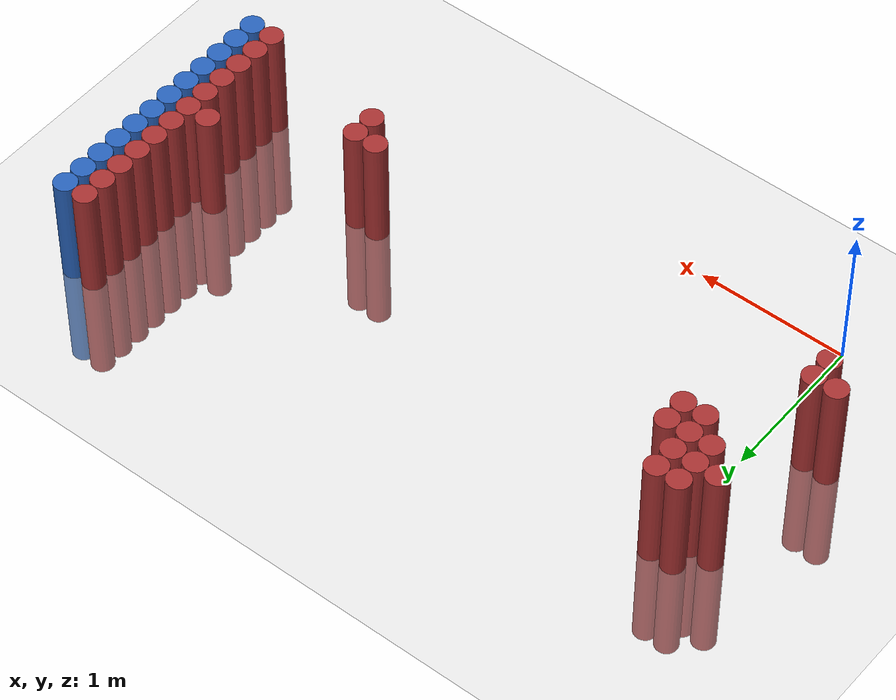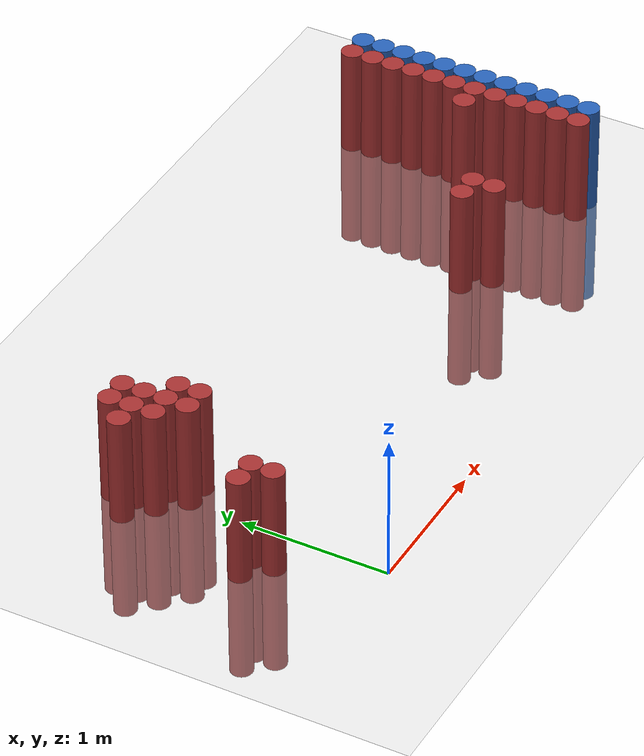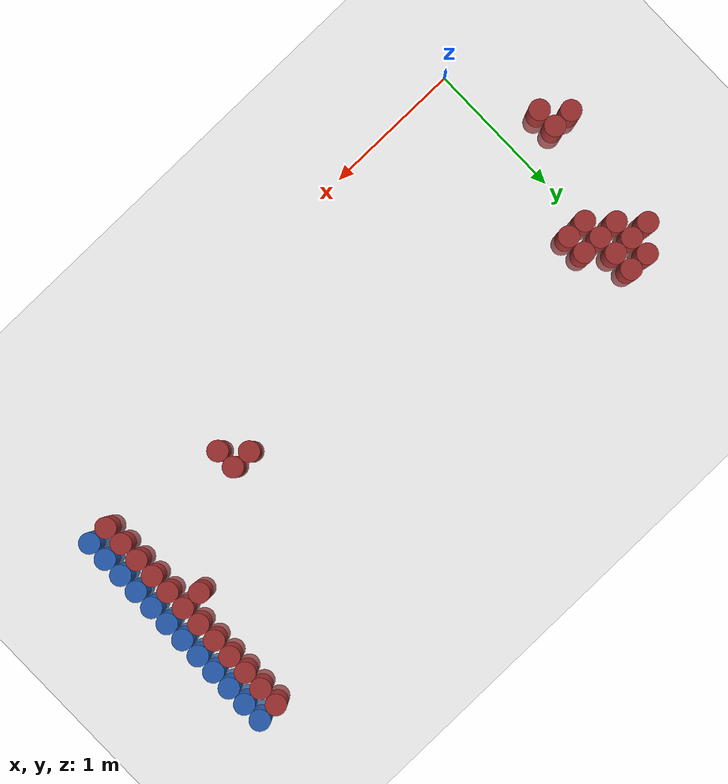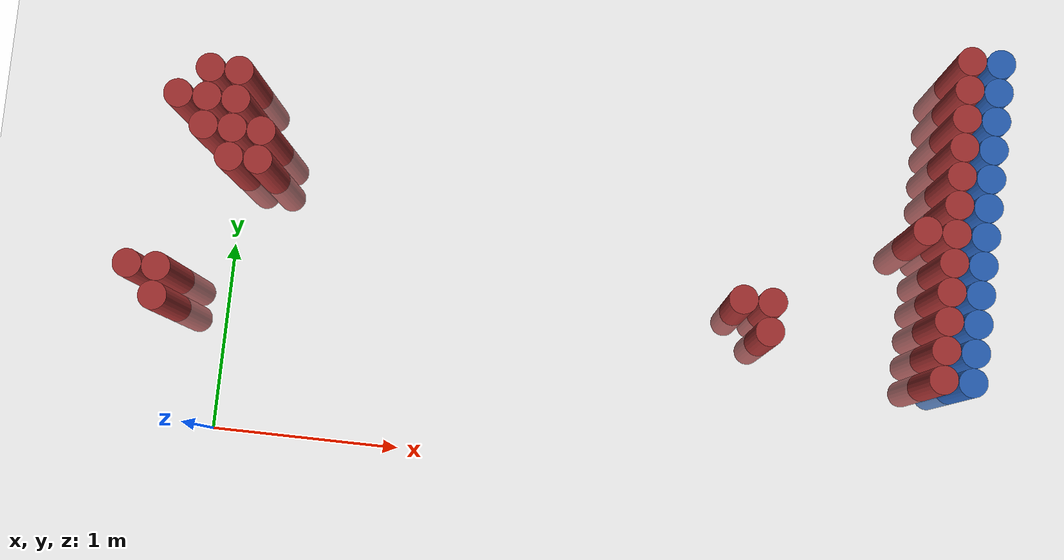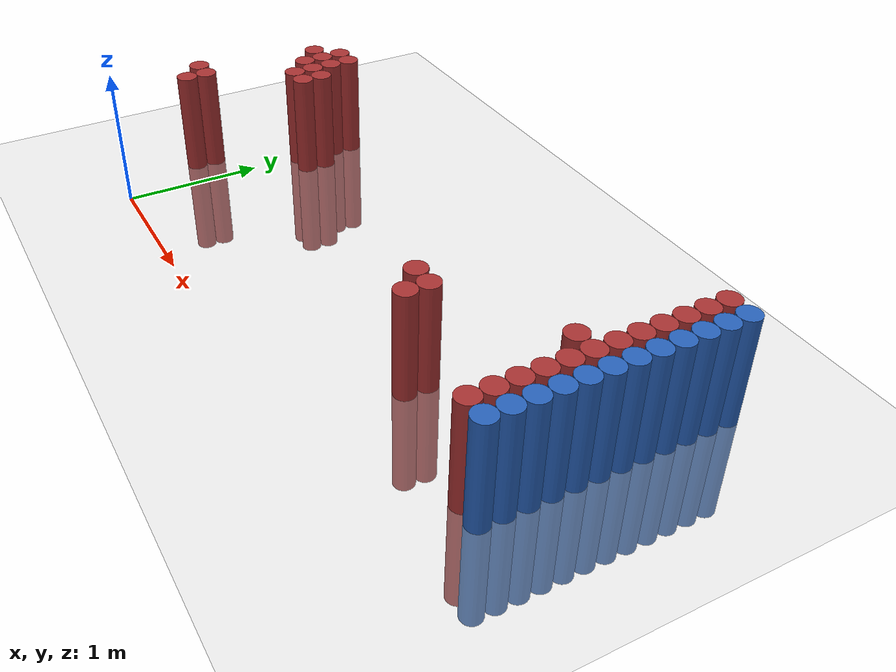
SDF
<sdf version="1.6">
 <world name="default">
  <model name="ground_plane">
   <static>1</static>
   <link name="link">
    <collision name="collision">
     <geometry><plane><normal>0 0 1</normal><size>100 100</size></plane></geometry>
     <surface><friction><ode><mu>100</mu><mu2>50</mu2></ode></friction></surface>
    </collision>
    <visual name="visual">
     <cast_shadows>0</cast_shadows>
     <geometry><plane><normal>0 0 1</normal><size>100 100</size></plane></geometry>
     <material>
      <script><uri>file://media/materials/scripts/gazebo.material</uri><name>Gazebo/Grey</name></script>
     </material>
    </visual>
   </link>
  </model>
  <model name="unit_cylinder_124">
   <static>1</static>
   <pose>3.925000 0.775000 0.000000 0.000000 0.000000 0.000000</pose>
   <link name="link">
    <inertial>
     <mass>1</mass>
     <inertia><ixx>0.145833</ixx><ixy>0</ixy><ixz>0</ixz><iyy>0.145833</iyy><iyz>0</iyz><izz>0.125</izz></inertia>
    </inertial>
    <collision name="collision">
     <geometry><cylinder><radius>0.075000</radius><length>1.5</length></cylinder></geometry>
    </collision>
    <visual name="visual">
     <geometry><cylinder><radius>0.075000</radius><length>1.5</length></cylinder></geometry>
     <material>
      <ambient>0.152000 0.379000 0.720000 1</ambient>
      <diffuse>0.152000 0.379000 0.720000 1</diffuse>
     </material>
     <material>
      <script><name>Gazebo/Grey</name><uri>file://media/materials/scripts/gazebo.material</uri></script>
     </material>
    </visual>
   </link>
  </model>
  <model name="unit_cylinder_126">
   <static>1</static>
   <pose>3.925000 0.925000 0.000000 0.000000 0.000000 0.000000</pose>
   <link name="link">
    <inertial>
     <mass>1</mass>
     <inertia><ixx>0.145833</ixx><ixy>0</ixy><ixz>0</ixz><iyy>0.145833</iyy><iyz>0</iyz><izz>0.125</izz></inertia>
    </inertial>
    <collision name="collision">
     <geometry><cylinder><radius>0.075000</radius><length>1.5</length></cylinder></geometry>
    </collision>
    <visual name="visual">
     <geometry><cylinder><radius>0.075000</radius><length>1.5</length></cylinder></geometry>
     <material>
      <ambient>0.152000 0.379000 0.720000 1</ambient>
      <diffuse>0.152000 0.379000 0.720000 1</diffuse>
     </material>
     <material>
      <script><name>Gazebo/Grey</name><uri>file://media/materials/scripts/gazebo.material</uri></script>
     </material>
    </visual>
   </link>
  </model>
  <model name="unit_cylinder_128">
   <static>1</static>
   <pose>3.925000 1.075000 0.000000 0.000000 0.000000 0.000000</pose>
   <link name="link">
    <inertial>
     <mass>1</mass>
     <inertia><ixx>0.145833</ixx><ixy>0</ixy><ixz>0</ixz><iyy>0.145833</iyy><iyz>0</iyz><izz>0.125</izz></inertia>
    </inertial>
    <collision name="collision">
     <geometry><cylinder><radius>0.075000</radius><length>1.5</length></cylinder></geometry>
    </collision>
    <visual name="visual">
     <geometry><cylinder><radius>0.075000</radius><length>1.5</length></cylinder></geometry>
     <material>
      <ambient>0.152000 0.379000 0.720000 1</ambient>
      <diffuse>0.152000 0.379000 0.720000 1</diffuse>
     </material>
     <material>
      <script><name>Gazebo/Grey</name><uri>file://media/materials/scripts/gazebo.material</uri></script>
     </material>
    </visual>
   </link>
  </model>
  <model name="unit_cylinder_130">
   <static>1</static>
   <pose>3.925000 1.225000 0.000000 0.000000 0.000000 0.000000</pose>
   <link name="link">
    <inertial>
     <mass>1</mass>
     <inertia><ixx>0.145833</ixx><ixy>0</ixy><ixz>0</ixz><iyy>0.145833</iyy><iyz>0</iyz><izz>0.125</izz></inertia>
    </inertial>
    <collision name="collision">
     <geometry><cylinder><radius>0.075000</radius><length>1.5</length></cylinder></geometry>
    </collision>
    <visual name="visual">
     <geometry><cylinder><radius>0.075000</radius><length>1.5</length></cylinder></geometry>
     <material>
      <ambient>0.152000 0.379000 0.720000 1</ambient>
      <diffuse>0.152000 0.379000 0.720000 1</diffuse>
     </material>
     <material>
      <script><name>Gazebo/Grey</name><uri>file://media/materials/scripts/gazebo.material</uri></script>
     </material>
    </visual>
   </link>
  </model>
  <model name="unit_cylinder_132">
   <static>1</static>
   <pose>3.925000 1.375000 0.000000 0.000000 0.000000 0.000000</pose>
   <link name="link">
    <inertial>
     <mass>1</mass>
     <inertia><ixx>0.145833</ixx><ixy>0</ixy><ixz>0</ixz><iyy>0.145833</iyy><iyz>0</iyz><izz>0.125</izz></inertia>
    </inertial>
    <collision name="collision">
     <geometry><cylinder><radius>0.075000</radius><length>1.5</length></cylinder></geometry>
    </collision>
    <visual name="visual">
     <geometry><cylinder><radius>0.075000</radius><length>1.5</length></cylinder></geometry>
     <material>
      <ambient>0.152000 0.379000 0.720000 1</ambient>
      <diffuse>0.152000 0.379000 0.720000 1</diffuse>
     </material>
     <material>
      <script><name>Gazebo/Grey</name><uri>file://media/materials/scripts/gazebo.material</uri></script>
     </material>
    </visual>
   </link>
  </model>
  <model name="unit_cylinder_134">
   <static>1</static>
   <pose>3.925000 1.525000 0.000000 0.000000 0.000000 0.000000</pose>
   <link name="link">
    <inertial>
     <mass>1</mass>
     <inertia><ixx>0.145833</ixx><ixy>0</ixy><ixz>0</ixz><iyy>0.145833</iyy><iyz>0</iyz><izz>0.125</izz></inertia>
    </inertial>
    <collision name="collision">
     <geometry><cylinder><radius>0.075000</radius><length>1.5</length></cylinder></geometry>
    </collision>
    <visual name="visual">
     <geometry><cylinder><radius>0.075000</radius><length>1.5</length></cylinder></geometry>
     <material>
      <ambient>0.152000 0.379000 0.720000 1</ambient>
      <diffuse>0.152000 0.379000 0.720000 1</diffuse>
     </material>
     <material>
      <script><name>Gazebo/Grey</name><uri>file://media/materials/scripts/gazebo.material</uri></script>
     </material>
    </visual>
   </link>
  </model>
  <model name="unit_cylinder_136">
   <static>1</static>
   <pose>3.925000 1.675000 0.000000 0.000000 0.000000 0.000000</pose>
   <link name="link">
    <inertial>
     <mass>1</mass>
     <inertia><ixx>0.145833</ixx><ixy>0</ixy><ixz>0</ixz><iyy>0.145833</iyy><iyz>0</iyz><izz>0.125</izz></inertia>
    </inertial>
    <collision name="collision">
     <geometry><cylinder><radius>0.075000</radius><length>1.5</length></cylinder></geometry>
    </collision>
    <visual name="visual">
     <geometry><cylinder><radius>0.075000</radius><length>1.5</length></cylinder></geometry>
     <material>
      <ambient>0.152000 0.379000 0.720000 1</ambient>
      <diffuse>0.152000 0.379000 0.720000 1</diffuse>
     </material>
     <material>
      <script><name>Gazebo/Grey</name><uri>file://media/materials/scripts/gazebo.material</uri></script>
     </material>
    </visual>
   </link>
  </model>
  <model name="unit_cylinder_138">
   <static>1</static>
   <pose>3.925000 1.825000 0.000000 0.000000 0.000000 0.000000</pose>
   <link name="link">
    <inertial>
     <mass>1</mass>
     <inertia><ixx>0.145833</ixx><ixy>0</ixy><ixz>0</ixz><iyy>0.145833</iyy><iyz>0</iyz><izz>0.125</izz></inertia>
    </inertial>
    <collision name="collision">
     <geometry><cylinder><radius>0.075000</radius><length>1.5</length></cylinder></geometry>
    </collision>
    <visual name="visual">
     <geometry><cylinder><radius>0.075000</radius><length>1.5</length></cylinder></geometry>
     <material>
      <ambient>0.152000 0.379000 0.720000 1</ambient>
      <diffuse>0.152000 0.379000 0.720000 1</diffuse>
     </material>
     <material>
      <script><name>Gazebo/Grey</name><uri>file://media/materials/scripts/gazebo.material</uri></script>
     </material>
    </visual>
   </link>
  </model>
  <model name="unit_cylinder_140">
   <static>1</static>
   <pose>3.925000 1.975000 0.000000 0.000000 0.000000 0.000000</pose>
   <link name="link">
    <inertial>
     <mass>1</mass>
     <inertia><ixx>0.145833</ixx><ixy>0</ixy><ixz>0</ixz><iyy>0.145833</iyy><iyz>0</iyz><izz>0.125</izz></inertia>
    </inertial>
    <collision name="collision">
     <geometry><cylinder><radius>0.075000</radius><length>1.5</length></cylinder></geometry>
    </collision>
    <visual name="visual">
     <geometry><cylinder><radius>0.075000</radius><length>1.5</length></cylinder></geometry>
     <material>
      <ambient>0.152000 0.379000 0.720000 1</ambient>
      <diffuse>0.152000 0.379000 0.720000 1</diffuse>
     </material>
     <material>
      <script><name>Gazebo/Grey</name><uri>file://media/materials/scripts/gazebo.material</uri></script>
     </material>
    </visual>
   </link>
  </model>
  <model name="unit_cylinder_142">
   <static>1</static>
   <pose>3.925000 2.125000 0.000000 0.000000 0.000000 0.000000</pose>
   <link name="link">
    <inertial>
     <mass>1</mass>
     <inertia><ixx>0.145833</ixx><ixy>0</ixy><ixz>0</ixz><iyy>0.145833</iyy><iyz>0</iyz><izz>0.125</izz></inertia>
    </inertial>
    <collision name="collision">
     <geometry><cylinder><radius>0.075000</radius><length>1.5</length></cylinder></geometry>
    </collision>
    <visual name="visual">
     <geometry><cylinder><radius>0.075000</radius><length>1.5</length></cylinder></geometry>
     <material>
      <ambient>0.152000 0.379000 0.720000 1</ambient>
      <diffuse>0.152000 0.379000 0.720000 1</diffuse>
     </material>
     <material>
      <script><name>Gazebo/Grey</name><uri>file://media/materials/scripts/gazebo.material</uri></script>
     </material>
    </visual>
   </link>
  </model>
  <model name="unit_cylinder_144">
   <static>1</static>
   <pose>3.925000 2.275000 0.000000 0.000000 0.000000 0.000000</pose>
   <link name="link">
    <inertial>
     <mass>1</mass>
     <inertia><ixx>0.145833</ixx><ixy>0</ixy><ixz>0</ixz><iyy>0.145833</iyy><iyz>0</iyz><izz>0.125</izz></inertia>
    </inertial>
    <collision name="collision">
     <geometry><cylinder><radius>0.075000</radius><length>1.5</length></cylinder></geometry>
    </collision>
    <visual name="visual">
     <geometry><cylinder><radius>0.075000</radius><length>1.5</length></cylinder></geometry>
     <material>
      <ambient>0.152000 0.379000 0.720000 1</ambient>
      <diffuse>0.152000 0.379000 0.720000 1</diffuse>
     </material>
     <material>
      <script><name>Gazebo/Grey</name><uri>file://media/materials/scripts/gazebo.material</uri></script>
     </material>
    </visual>
   </link>
  </model>
  <model name="unit_cylinder_378">
   <static>1</static>
   <pose>-0.425000 0.775000 0.000000 0.000000 0.000000 0.000000</pose>
   <link name="link">
    <inertial>
     <mass>1</mass>
     <inertia><ixx>0.145833</ixx><ixy>0</ixy><ixz>0</ixz><iyy>0.145833</iyy><iyz>0</iyz><izz>0.125</izz></inertia>
    </inertial>
    <collision name="collision">
     <geometry><cylinder><radius>0.075000</radius><length>1.5</length></cylinder></geometry>
    </collision>
    <visual name="visual">
     <geometry><cylinder><radius>0.075000</radius><length>1.5</length></cylinder></geometry>
     <material>
      <ambient>0.648000 0.192000 0.192000 1</ambient>
      <diffuse>0.648000 0.192000 0.192000 1</diffuse>
     </material>
     <material>
      <script><name>Gazebo/Grey</name><uri>file://media/materials/scripts/gazebo.material</uri></script>
     </material>
    </visual>
   </link>
  </model>
  <model name="unit_cylinder_383">
   <static>1</static>
   <pose>-0.275000 0.625000 0.000000 0.000000 0.000000 0.000000</pose>
   <link name="link">
    <inertial>
     <mass>1</mass>
     <inertia><ixx>0.145833</ixx><ixy>0</ixy><ixz>0</ixz><iyy>0.145833</iyy><iyz>0</iyz><izz>0.125</izz></inertia>
    </inertial>
    <collision name="collision">
     <geometry><cylinder><radius>0.075000</radius><length>1.5</length></cylinder></geometry>
    </collision>
    <visual name="visual">
     <geometry><cylinder><radius>0.075000</radius><length>1.5</length></cylinder></geometry>
     <material>
      <ambient>0.648000 0.192000 0.192000 1</ambient>
      <diffuse>0.648000 0.192000 0.192000 1</diffuse>
     </material>
     <material>
      <script><name>Gazebo/Grey</name><uri>file://media/materials/scripts/gazebo.material</uri></script>
     </material>
    </visual>
   </link>
  </model>
  <model name="unit_cylinder_384">
   <static>1</static>
   <pose>-0.275000 0.775000 0.000000 0.000000 0.000000 0.000000</pose>
   <link name="link">
    <inertial>
     <mass>1</mass>
     <inertia><ixx>0.145833</ixx><ixy>0</ixy><ixz>0</ixz><iyy>0.145833</iyy><iyz>0</iyz><izz>0.125</izz></inertia>
    </inertial>
    <collision name="collision">
     <geometry><cylinder><radius>0.075000</radius><length>1.5</length></cylinder></geometry>
    </collision>
    <visual name="visual">
     <geometry><cylinder><radius>0.075000</radius><length>1.5</length></cylinder></geometry>
     <material>
      <ambient>0.648000 0.192000 0.192000 1</ambient>
      <diffuse>0.648000 0.192000 0.192000 1</diffuse>
     </material>
     <material>
      <script><name>Gazebo/Grey</name><uri>file://media/materials/scripts/gazebo.material</uri></script>
     </material>
    </visual>
   </link>
  </model>
  <model name="unit_cylinder_385">
   <static>1</static>
   <pose>-0.275000 1.675000 0.000000 0.000000 0.000000 0.000000</pose>
   <link name="link">
    <inertial>
     <mass>1</mass>
     <inertia><ixx>0.145833</ixx><ixy>0</ixy><ixz>0</ixz><iyy>0.145833</iyy><iyz>0</iyz><izz>0.125</izz></inertia>
    </inertial>
    <collision name="collision">
     <geometry><cylinder><radius>0.075000</radius><length>1.5</length></cylinder></geometry>
    </collision>
    <visual name="visual">
     <geometry><cylinder><radius>0.075000</radius><length>1.5</length></cylinder></geometry>
     <material>
      <ambient>0.648000 0.192000 0.192000 1</ambient>
      <diffuse>0.648000 0.192000 0.192000 1</diffuse>
     </material>
     <material>
      <script><name>Gazebo/Grey</name><uri>file://media/materials/scripts/gazebo.material</uri></script>
     </material>
    </visual>
   </link>
  </model>
  <model name="unit_cylinder_390">
   <static>1</static>
   <pose>-0.125000 1.525000 0.000000 0.000000 0.000000 0.000000</pose>
   <link name="link">
    <inertial>
     <mass>1</mass>
     <inertia><ixx>0.145833</ixx><ixy>0</ixy><ixz>0</ixz><iyy>0.145833</iyy><iyz>0</iyz><izz>0.125</izz></inertia>
    </inertial>
    <collision name="collision">
     <geometry><cylinder><radius>0.075000</radius><length>1.5</length></cylinder></geometry>
    </collision>
    <visual name="visual">
     <geometry><cylinder><radius>0.075000</radius><length>1.5</length></cylinder></geometry>
     <material>
      <ambient>0.648000 0.192000 0.192000 1</ambient>
      <diffuse>0.648000 0.192000 0.192000 1</diffuse>
     </material>
     <material>
      <script><name>Gazebo/Grey</name><uri>file://media/materials/scripts/gazebo.material</uri></script>
     </material>
    </visual>
   </link>
  </model>
  <model name="unit_cylinder_391">
   <static>1</static>
   <pose>-0.125000 1.675000 0.000000 0.000000 0.000000 0.000000</pose>
   <link name="link">
    <inertial>
     <mass>1</mass>
     <inertia><ixx>0.145833</ixx><ixy>0</ixy><ixz>0</ixz><iyy>0.145833</iyy><iyz>0</iyz><izz>0.125</izz></inertia>
    </inertial>
    <collision name="collision">
     <geometry><cylinder><radius>0.075000</radius><length>1.5</length></cylinder></geometry>
    </collision>
    <visual name="visual">
     <geometry><cylinder><radius>0.075000</radius><length>1.5</length></cylinder></geometry>
     <material>
      <ambient>0.648000 0.192000 0.192000 1</ambient>
      <diffuse>0.648000 0.192000 0.192000 1</diffuse>
     </material>
     <material>
      <script><name>Gazebo/Grey</name><uri>file://media/materials/scripts/gazebo.material</uri></script>
     </material>
    </visual>
   </link>
  </model>
  <model name="unit_cylinder_392">
   <static>1</static>
   <pose>-0.125000 1.825000 0.000000 0.000000 0.000000 0.000000</pose>
   <link name="link">
    <inertial>
     <mass>1</mass>
     <inertia><ixx>0.145833</ixx><ixy>0</ixy><ixz>0</ixz><iyy>0.145833</iyy><iyz>0</iyz><izz>0.125</izz></inertia>
    </inertial>
    <collision name="collision">
     <geometry><cylinder><radius>0.075000</radius><length>1.5</length></cylinder></geometry>
    </collision>
    <visual name="visual">
     <geometry><cylinder><radius>0.075000</radius><length>1.5</length></cylinder></geometry>
     <material>
      <ambient>0.648000 0.192000 0.192000 1</ambient>
      <diffuse>0.648000 0.192000 0.192000 1</diffuse>
     </material>
     <material>
      <script><name>Gazebo/Grey</name><uri>file://media/materials/scripts/gazebo.material</uri></script>
     </material>
    </visual>
   </link>
  </model>
  <model name="unit_cylinder_395">
   <static>1</static>
   <pose>0.025000 1.375000 0.000000 0.000000 0.000000 0.000000</pose>
   <link name="link">
    <inertial>
     <mass>1</mass>
     <inertia><ixx>0.145833</ixx><ixy>0</ixy><ixz>0</ixz><iyy>0.145833</iyy><iyz>0</iyz><izz>0.125</izz></inertia>
    </inertial>
    <collision name="collision">
     <geometry><cylinder><radius>0.075000</radius><length>1.5</length></cylinder></geometry>
    </collision>
    <visual name="visual">
     <geometry><cylinder><radius>0.075000</radius><length>1.5</length></cylinder></geometry>
     <material>
      <ambient>0.648000 0.192000 0.192000 1</ambient>
      <diffuse>0.648000 0.192000 0.192000 1</diffuse>
     </material>
     <material>
      <script><name>Gazebo/Grey</name><uri>file://media/materials/scripts/gazebo.material</uri></script>
     </material>
    </visual>
   </link>
  </model>
  <model name="unit_cylinder_396">
   <static>1</static>
   <pose>0.025000 1.525000 0.000000 0.000000 0.000000 0.000000</pose>
   <link name="link">
    <inertial>
     <mass>1</mass>
     <inertia><ixx>0.145833</ixx><ixy>0</ixy><ixz>0</ixz><iyy>0.145833</iyy><iyz>0</iyz><izz>0.125</izz></inertia>
    </inertial>
    <collision name="collision">
     <geometry><cylinder><radius>0.075000</radius><length>1.5</length></cylinder></geometry>
    </collision>
    <visual name="visual">
     <geometry><cylinder><radius>0.075000</radius><length>1.5</length></cylinder></geometry>
     <material>
      <ambient>0.648000 0.192000 0.192000 1</ambient>
      <diffuse>0.648000 0.192000 0.192000 1</diffuse>
     </material>
     <material>
      <script><name>Gazebo/Grey</name><uri>file://media/materials/scripts/gazebo.material</uri></script>
     </material>
    </visual>
   </link>
  </model>
  <model name="unit_cylinder_397">
   <static>1</static>
   <pose>0.025000 1.675000 0.000000 0.000000 0.000000 0.000000</pose>
   <link name="link">
    <inertial>
     <mass>1</mass>
     <inertia><ixx>0.145833</ixx><ixy>0</ixy><ixz>0</ixz><iyy>0.145833</iyy><iyz>0</iyz><izz>0.125</izz></inertia>
    </inertial>
    <collision name="collision">
     <geometry><cylinder><radius>0.075000</radius><length>1.5</length></cylinder></geometry>
    </collision>
    <visual name="visual">
     <geometry><cylinder><radius>0.075000</radius><length>1.5</length></cylinder></geometry>
     <material>
      <ambient>0.648000 0.192000 0.192000 1</ambient>
      <diffuse>0.648000 0.192000 0.192000 1</diffuse>
     </material>
     <material>
      <script><name>Gazebo/Grey</name><uri>file://media/materials/scripts/gazebo.material</uri></script>
     </material>
    </visual>
   </link>
  </model>
  <model name="unit_cylinder_398">
   <static>1</static>
   <pose>0.025000 1.825000 0.000000 0.000000 0.000000 0.000000</pose>
   <link name="link">
    <inertial>
     <mass>1</mass>
     <inertia><ixx>0.145833</ixx><ixy>0</ixy><ixz>0</ixz><iyy>0.145833</iyy><iyz>0</iyz><izz>0.125</izz></inertia>
    </inertial>
    <collision name="collision">
     <geometry><cylinder><radius>0.075000</radius><length>1.5</length></cylinder></geometry>
    </collision>
    <visual name="visual">
     <geometry><cylinder><radius>0.075000</radius><length>1.5</length></cylinder></geometry>
     <material>
      <ambient>0.648000 0.192000 0.192000 1</ambient>
      <diffuse>0.648000 0.192000 0.192000 1</diffuse>
     </material>
     <material>
      <script><name>Gazebo/Grey</name><uri>file://media/materials/scripts/gazebo.material</uri></script>
     </material>
    </visual>
   </link>
  </model>
  <model name="unit_cylinder_402">
   <static>1</static>
   <pose>0.175000 1.375000 0.000000 0.000000 0.000000 0.000000</pose>
   <link name="link">
    <inertial>
     <mass>1</mass>
     <inertia><ixx>0.145833</ixx><ixy>0</ixy><ixz>0</ixz><iyy>0.145833</iyy><iyz>0</iyz><izz>0.125</izz></inertia>
    </inertial>
    <collision name="collision">
     <geometry><cylinder><radius>0.075000</radius><length>1.5</length></cylinder></geometry>
    </collision>
    <visual name="visual">
     <geometry><cylinder><radius>0.075000</radius><length>1.5</length></cylinder></geometry>
     <material>
      <ambient>0.648000 0.192000 0.192000 1</ambient>
      <diffuse>0.648000 0.192000 0.192000 1</diffuse>
     </material>
     <material>
      <script><name>Gazebo/Grey</name><uri>file://media/materials/scripts/gazebo.material</uri></script>
     </material>
    </visual>
   </link>
  </model>
  <model name="unit_cylinder_403">
   <static>1</static>
   <pose>0.175000 1.525000 0.000000 0.000000 0.000000 0.000000</pose>
   <link name="link">
    <inertial>
     <mass>1</mass>
     <inertia><ixx>0.145833</ixx><ixy>0</ixy><ixz>0</ixz><iyy>0.145833</iyy><iyz>0</iyz><izz>0.125</izz></inertia>
    </inertial>
    <collision name="collision">
     <geometry><cylinder><radius>0.075000</radius><length>1.5</length></cylinder></geometry>
    </collision>
    <visual name="visual">
     <geometry><cylinder><radius>0.075000</radius><length>1.5</length></cylinder></geometry>
     <material>
      <ambient>0.648000 0.192000 0.192000 1</ambient>
      <diffuse>0.648000 0.192000 0.192000 1</diffuse>
     </material>
     <material>
      <script><name>Gazebo/Grey</name><uri>file://media/materials/scripts/gazebo.material</uri></script>
     </material>
    </visual>
   </link>
  </model>
  <model name="unit_cylinder_448">
   <static>1</static>
   <pose>2.725000 0.925000 0.000000 0.000000 0.000000 0.000000</pose>
   <link name="link">
    <inertial>
     <mass>1</mass>
     <inertia><ixx>0.145833</ixx><ixy>0</ixy><ixz>0</ixz><iyy>0.145833</iyy><iyz>0</iyz><izz>0.125</izz></inertia>
    </inertial>
    <collision name="collision">
     <geometry><cylinder><radius>0.075000</radius><length>1.5</length></cylinder></geometry>
    </collision>
    <visual name="visual">
     <geometry><cylinder><radius>0.075000</radius><length>1.5</length></cylinder></geometry>
     <material>
      <ambient>0.648000 0.192000 0.192000 1</ambient>
      <diffuse>0.648000 0.192000 0.192000 1</diffuse>
     </material>
     <material>
      <script><name>Gazebo/Grey</name><uri>file://media/materials/scripts/gazebo.material</uri></script>
     </material>
    </visual>
   </link>
  </model>
  <model name="unit_cylinder_454">
   <static>1</static>
   <pose>2.875000 0.775000 0.000000 0.000000 0.000000 0.000000</pose>
   <link name="link">
    <inertial>
     <mass>1</mass>
     <inertia><ixx>0.145833</ixx><ixy>0</ixy><ixz>0</ixz><iyy>0.145833</iyy><iyz>0</iyz><izz>0.125</izz></inertia>
    </inertial>
    <collision name="collision">
     <geometry><cylinder><radius>0.075000</radius><length>1.5</length></cylinder></geometry>
    </collision>
    <visual name="visual">
     <geometry><cylinder><radius>0.075000</radius><length>1.5</length></cylinder></geometry>
     <material>
      <ambient>0.648000 0.192000 0.192000 1</ambient>
      <diffuse>0.648000 0.192000 0.192000 1</diffuse>
     </material>
     <material>
      <script><name>Gazebo/Grey</name><uri>file://media/materials/scripts/gazebo.material</uri></script>
     </material>
    </visual>
   </link>
  </model>
  <model name="unit_cylinder_455">
   <static>1</static>
   <pose>2.875000 0.925000 0.000000 0.000000 0.000000 0.000000</pose>
   <link name="link">
    <inertial>
     <mass>1</mass>
     <inertia><ixx>0.145833</ixx><ixy>0</ixy><ixz>0</ixz><iyy>0.145833</iyy><iyz>0</iyz><izz>0.125</izz></inertia>
    </inertial>
    <collision name="collision">
     <geometry><cylinder><radius>0.075000</radius><length>1.5</length></cylinder></geometry>
    </collision>
    <visual name="visual">
     <geometry><cylinder><radius>0.075000</radius><length>1.5</length></cylinder></geometry>
     <material>
      <ambient>0.648000 0.192000 0.192000 1</ambient>
      <diffuse>0.648000 0.192000 0.192000 1</diffuse>
     </material>
     <material>
      <script><name>Gazebo/Grey</name><uri>file://media/materials/scripts/gazebo.material</uri></script>
     </material>
    </visual>
   </link>
  </model>
  <model name="unit_cylinder_480">
   <static>1</static>
   <pose>3.625000 1.375000 0.000000 0.000000 0.000000 0.000000</pose>
   <link name="link">
    <inertial>
     <mass>1</mass>
     <inertia><ixx>0.145833</ixx><ixy>0</ixy><ixz>0</ixz><iyy>0.145833</iyy><iyz>0</iyz><izz>0.125</izz></inertia>
    </inertial>
    <collision name="collision">
     <geometry><cylinder><radius>0.075000</radius><length>1.5</length></cylinder></geometry>
    </collision>
    <visual name="visual">
     <geometry><cylinder><radius>0.075000</radius><length>1.5</length></cylinder></geometry>
     <material>
      <ambient>0.648000 0.192000 0.192000 1</ambient>
      <diffuse>0.648000 0.192000 0.192000 1</diffuse>
     </material>
     <material>
      <script><name>Gazebo/Grey</name><uri>file://media/materials/scripts/gazebo.material</uri></script>
     </material>
    </visual>
   </link>
  </model>
  <model name="unit_cylinder_490">
   <static>1</static>
   <pose>3.775000 0.625000 0.000000 0.000000 0.000000 0.000000</pose>
   <link name="link">
    <inertial>
     <mass>1</mass>
     <inertia><ixx>0.145833</ixx><ixy>0</ixy><ixz>0</ixz><iyy>0.145833</iyy><iyz>0</iyz><izz>0.125</izz></inertia>
    </inertial>
    <collision name="collision">
     <geometry><cylinder><radius>0.075000</radius><length>1.5</length></cylinder></geometry>
    </collision>
    <visual name="visual">
     <geometry><cylinder><radius>0.075000</radius><length>1.5</length></cylinder></geometry>
     <material>
      <ambient>0.648000 0.192000 0.192000 1</ambient>
      <diffuse>0.648000 0.192000 0.192000 1</diffuse>
     </material>
     <material>
      <script><name>Gazebo/Grey</name><uri>file://media/materials/scripts/gazebo.material</uri></script>
     </material>
    </visual>
   </link>
  </model>
  <model name="unit_cylinder_491">
   <static>1</static>
   <pose>3.775000 0.775000 0.000000 0.000000 0.000000 0.000000</pose>
   <link name="link">
    <inertial>
     <mass>1</mass>
     <inertia><ixx>0.145833</ixx><ixy>0</ixy><ixz>0</ixz><iyy>0.145833</iyy><iyz>0</iyz><izz>0.125</izz></inertia>
    </inertial>
    <collision name="collision">
     <geometry><cylinder><radius>0.075000</radius><length>1.5</length></cylinder></geometry>
    </collision>
    <visual name="visual">
     <geometry><cylinder><radius>0.075000</radius><length>1.5</length></cylinder></geometry>
     <material>
      <ambient>0.648000 0.192000 0.192000 1</ambient>
      <diffuse>0.648000 0.192000 0.192000 1</diffuse>
     </material>
     <material>
      <script><name>Gazebo/Grey</name><uri>file://media/materials/scripts/gazebo.material</uri></script>
     </material>
    </visual>
   </link>
  </model>
  <model name="unit_cylinder_492">
   <static>1</static>
   <pose>3.775000 0.925000 0.000000 0.000000 0.000000 0.000000</pose>
   <link name="link">
    <inertial>
     <mass>1</mass>
     <inertia><ixx>0.145833</ixx><ixy>0</ixy><ixz>0</ixz><iyy>0.145833</iyy><iyz>0</iyz><izz>0.125</izz></inertia>
    </inertial>
    <collision name="collision">
     <geometry><cylinder><radius>0.075000</radius><length>1.5</length></cylinder></geometry>
    </collision>
    <visual name="visual">
     <geometry><cylinder><radius>0.075000</radius><length>1.5</length></cylinder></geometry>
     <material>
      <ambient>0.648000 0.192000 0.192000 1</ambient>
      <diffuse>0.648000 0.192000 0.192000 1</diffuse>
     </material>
     <material>
      <script><name>Gazebo/Grey</name><uri>file://media/materials/scripts/gazebo.material</uri></script>
     </material>
    </visual>
   </link>
  </model>
  <model name="unit_cylinder_493">
   <static>1</static>
   <pose>3.775000 1.075000 0.000000 0.000000 0.000000 0.000000</pose>
   <link name="link">
    <inertial>
     <mass>1</mass>
     <inertia><ixx>0.145833</ixx><ixy>0</ixy><ixz>0</ixz><iyy>0.145833</iyy><iyz>0</iyz><izz>0.125</izz></inertia>
    </inertial>
    <collision name="collision">
     <geometry><cylinder><radius>0.075000</radius><length>1.5</length></cylinder></geometry>
    </collision>
    <visual name="visual">
     <geometry><cylinder><radius>0.075000</radius><length>1.5</length></cylinder></geometry>
     <material>
      <ambient>0.648000 0.192000 0.192000 1</ambient>
      <diffuse>0.648000 0.192000 0.192000 1</diffuse>
     </material>
     <material>
      <script><name>Gazebo/Grey</name><uri>file://media/materials/scripts/gazebo.material</uri></script>
     </material>
    </visual>
   </link>
  </model>
  <model name="unit_cylinder_494">
   <static>1</static>
   <pose>3.775000 1.225000 0.000000 0.000000 0.000000 0.000000</pose>
   <link name="link">
    <inertial>
     <mass>1</mass>
     <inertia><ixx>0.145833</ixx><ixy>0</ixy><ixz>0</ixz><iyy>0.145833</iyy><iyz>0</iyz><izz>0.125</izz></inertia>
    </inertial>
    <collision name="collision">
     <geometry><cylinder><radius>0.075000</radius><length>1.5</length></cylinder></geometry>
    </collision>
    <visual name="visual">
     <geometry><cylinder><radius>0.075000</radius><length>1.5</length></cylinder></geometry>
     <material>
      <ambient>0.648000 0.192000 0.192000 1</ambient>
      <diffuse>0.648000 0.192000 0.192000 1</diffuse>
     </material>
     <material>
      <script><name>Gazebo/Grey</name><uri>file://media/materials/scripts/gazebo.material</uri></script>
     </material>
    </visual>
   </link>
  </model>
  <model name="unit_cylinder_495">
   <static>1</static>
   <pose>3.775000 1.375000 0.000000 0.000000 0.000000 0.000000</pose>
   <link name="link">
    <inertial>
     <mass>1</mass>
     <inertia><ixx>0.145833</ixx><ixy>0</ixy><ixz>0</ixz><iyy>0.145833</iyy><iyz>0</iyz><izz>0.125</izz></inertia>
    </inertial>
    <collision name="collision">
     <geometry><cylinder><radius>0.075000</radius><length>1.5</length></cylinder></geometry>
    </collision>
    <visual name="visual">
     <geometry><cylinder><radius>0.075000</radius><length>1.5</length></cylinder></geometry>
     <material>
      <ambient>0.648000 0.192000 0.192000 1</ambient>
      <diffuse>0.648000 0.192000 0.192000 1</diffuse>
     </material>
     <material>
      <script><name>Gazebo/Grey</name><uri>file://media/materials/scripts/gazebo.material</uri></script>
     </material>
    </visual>
   </link>
  </model>
  <model name="unit_cylinder_496">
   <static>1</static>
   <pose>3.775000 1.525000 0.000000 0.000000 0.000000 0.000000</pose>
   <link name="link">
    <inertial>
     <mass>1</mass>
     <inertia><ixx>0.145833</ixx><ixy>0</ixy><ixz>0</ixz><iyy>0.145833</iyy><iyz>0</iyz><izz>0.125</izz></inertia>
    </inertial>
    <collision name="collision">
     <geometry><cylinder><radius>0.075000</radius><length>1.5</length></cylinder></geometry>
    </collision>
    <visual name="visual">
     <geometry><cylinder><radius>0.075000</radius><length>1.5</length></cylinder></geometry>
     <material>
      <ambient>0.648000 0.192000 0.192000 1</ambient>
      <diffuse>0.648000 0.192000 0.192000 1</diffuse>
     </material>
     <material>
      <script><name>Gazebo/Grey</name><uri>file://media/materials/scripts/gazebo.material</uri></script>
     </material>
    </visual>
   </link>
  </model>
  <model name="unit_cylinder_497">
   <static>1</static>
   <pose>3.775000 1.675000 0.000000 0.000000 0.000000 0.000000</pose>
   <link name="link">
    <inertial>
     <mass>1</mass>
     <inertia><ixx>0.145833</ixx><ixy>0</ixy><ixz>0</ixz><iyy>0.145833</iyy><iyz>0</iyz><izz>0.125</izz></inertia>
    </inertial>
    <collision name="collision">
     <geometry><cylinder><radius>0.075000</radius><length>1.5</length></cylinder></geometry>
    </collision>
    <visual name="visual">
     <geometry><cylinder><radius>0.075000</radius><length>1.5</length></cylinder></geometry>
     <material>
      <ambient>0.648000 0.192000 0.192000 1</ambient>
      <diffuse>0.648000 0.192000 0.192000 1</diffuse>
     </material>
     <material>
      <script><name>Gazebo/Grey</name><uri>file://media/materials/scripts/gazebo.material</uri></script>
     </material>
    </visual>
   </link>
  </model>
  <model name="unit_cylinder_498">
   <static>1</static>
   <pose>3.775000 1.825000 0.000000 0.000000 0.000000 0.000000</pose>
   <link name="link">
    <inertial>
     <mass>1</mass>
     <inertia><ixx>0.145833</ixx><ixy>0</ixy><ixz>0</ixz><iyy>0.145833</iyy><iyz>0</iyz><izz>0.125</izz></inertia>
    </inertial>
    <collision name="collision">
     <geometry><cylinder><radius>0.075000</radius><length>1.5</length></cylinder></geometry>
    </collision>
    <visual name="visual">
     <geometry><cylinder><radius>0.075000</radius><length>1.5</length></cylinder></geometry>
     <material>
      <ambient>0.648000 0.192000 0.192000 1</ambient>
      <diffuse>0.648000 0.192000 0.192000 1</diffuse>
     </material>
     <material>
      <script><name>Gazebo/Grey</name><uri>file://media/materials/scripts/gazebo.material</uri></script>
     </material>
    </visual>
   </link>
  </model>
  <model name="unit_cylinder_499">
   <static>1</static>
   <pose>3.775000 1.975000 0.000000 0.000000 0.000000 0.000000</pose>
   <link name="link">
    <inertial>
     <mass>1</mass>
     <inertia><ixx>0.145833</ixx><ixy>0</ixy><ixz>0</ixz><iyy>0.145833</iyy><iyz>0</iyz><izz>0.125</izz></inertia>
    </inertial>
    <collision name="collision">
     <geometry><cylinder><radius>0.075000</radius><length>1.5</length></cylinder></geometry>
    </collision>
    <visual name="visual">
     <geometry><cylinder><radius>0.075000</radius><length>1.5</length></cylinder></geometry>
     <material>
      <ambient>0.648000 0.192000 0.192000 1</ambient>
      <diffuse>0.648000 0.192000 0.192000 1</diffuse>
     </material>
     <material>
      <script><name>Gazebo/Grey</name><uri>file://media/materials/scripts/gazebo.material</uri></script>
     </material>
    </visual>
   </link>
  </model>
  <model name="unit_cylinder_500">
   <static>1</static>
   <pose>3.775000 2.125000 0.000000 0.000000 0.000000 0.000000</pose>
   <link name="link">
    <inertial>
     <mass>1</mass>
     <inertia><ixx>0.145833</ixx><ixy>0</ixy><ixz>0</ixz><iyy>0.145833</iyy><iyz>0</iyz><izz>0.125</izz></inertia>
    </inertial>
    <collision name="collision">
     <geometry><cylinder><radius>0.075000</radius><length>1.5</length></cylinder></geometry>
    </collision>
    <visual name="visual">
     <geometry><cylinder><radius>0.075000</radius><length>1.5</length></cylinder></geometry>
     <material>
      <ambient>0.648000 0.192000 0.192000 1</ambient>
      <diffuse>0.648000 0.192000 0.192000 1</diffuse>
     </material>
     <material>
      <script><name>Gazebo/Grey</name><uri>file://media/materials/scripts/gazebo.material</uri></script>
     </material>
    </visual>
   </link>
  </model>
  <model name="unit_cylinder_501">
   <static>1</static>
   <pose>3.775000 2.275000 0.000000 0.000000 0.000000 0.000000</pose>
   <link name="link">
    <inertial>
     <mass>1</mass>
     <inertia><ixx>0.145833</ixx><ixy>0</ixy><ixz>0</ixz><iyy>0.145833</iyy><iyz>0</iyz><izz>0.125</izz></inertia>
    </inertial>
    <collision name="collision">
     <geometry><cylinder><radius>0.075000</radius><length>1.5</length></cylinder></geometry>
    </collision>
    <visual name="visual">
     <geometry><cylinder><radius>0.075000</radius><length>1.5</length></cylinder></geometry>
     <material>
      <ambient>0.648000 0.192000 0.192000 1</ambient>
      <diffuse>0.648000 0.192000 0.192000 1</diffuse>
     </material>
     <material>
      <script><name>Gazebo/Grey</name><uri>file://media/materials/scripts/gazebo.material</uri></script>
     </material>
    </visual>
   </link>
  </model>
  <model name="unit_cylinder_525">
   <static>1</static>
   <pose>3.925000 0.625000 0.000000 0.000000 0.000000 0.000000</pose>
   <link name="link">
    <inertial>
     <mass>1</mass>
     <inertia><ixx>0.145833</ixx><ixy>0</ixy><ixz>0</ixz><iyy>0.145833</iyy><iyz>0</iyz><izz>0.125</izz></inertia>
    </inertial>
    <collision name="collision">
     <geometry><cylinder><radius>0.075000</radius><length>1.5</length></cylinder></geometry>
    </collision>
    <visual name="visual">
     <geometry><cylinder><radius>0.075000</radius><length>1.5</length></cylinder></geometry>
     <material>
      <ambient>0.152000 0.379000 0.720000 1</ambient>
      <diffuse>0.152000 0.379000 0.720000 1</diffuse>
     </material>
     <material>
      <script><name>Gazebo/Grey</name><uri>file://media/materials/scripts/gazebo.material</uri></script>
     </material>
    </visual>
   </link>
  </model>
  <model name="unit_cylinder_526">
   <static>1</static>
   <pose>3.925000 0.775000 0.000000 0.000000 0.000000 0.000000</pose>
   <link name="link">
    <inertial>
     <mass>1</mass>
     <inertia><ixx>0.145833</ixx><ixy>0</ixy><ixz>0</ixz><iyy>0.145833</iyy><iyz>0</iyz><izz>0.125</izz></inertia>
    </inertial>
    <collision name="collision">
     <geometry><cylinder><radius>0.075000</radius><length>1.5</length></cylinder></geometry>
    </collision>
    <visual name="visual">
     <geometry><cylinder><radius>0.075000</radius><length>1.5</length></cylinder></geometry>
     <material>
      <ambient>0.152000 0.379000 0.720000 1</ambient>
      <diffuse>0.152000 0.379000 0.720000 1</diffuse>
     </material>
     <material>
      <script><name>Gazebo/Grey</name><uri>file://media/materials/scripts/gazebo.material</uri></script>
     </material>
    </visual>
   </link>
  </model>
  <model name="unit_cylinder_527">
   <static>1</static>
   <pose>3.925000 0.925000 0.000000 0.000000 0.000000 0.000000</pose>
   <link name="link">
    <inertial>
     <mass>1</mass>
     <inertia><ixx>0.145833</ixx><ixy>0</ixy><ixz>0</ixz><iyy>0.145833</iyy><iyz>0</iyz><izz>0.125</izz></inertia>
    </inertial>
    <collision name="collision">
     <geometry><cylinder><radius>0.075000</radius><length>1.5</length></cylinder></geometry>
    </collision>
    <visual name="visual">
     <geometry><cylinder><radius>0.075000</radius><length>1.5</length></cylinder></geometry>
     <material>
      <ambient>0.152000 0.379000 0.720000 1</ambient>
      <diffuse>0.152000 0.379000 0.720000 1</diffuse>
     </material>
     <material>
      <script><name>Gazebo/Grey</name><uri>file://media/materials/scripts/gazebo.material</uri></script>
     </material>
    </visual>
   </link>
  </model>
  <model name="unit_cylinder_528">
   <static>1</static>
   <pose>3.925000 1.075000 0.000000 0.000000 0.000000 0.000000</pose>
   <link name="link">
    <inertial>
     <mass>1</mass>
     <inertia><ixx>0.145833</ixx><ixy>0</ixy><ixz>0</ixz><iyy>0.145833</iyy><iyz>0</iyz><izz>0.125</izz></inertia>
    </inertial>
    <collision name="collision">
     <geometry><cylinder><radius>0.075000</radius><length>1.5</length></cylinder></geometry>
    </collision>
    <visual name="visual">
     <geometry><cylinder><radius>0.075000</radius><length>1.5</length></cylinder></geometry>
     <material>
      <ambient>0.152000 0.379000 0.720000 1</ambient>
      <diffuse>0.152000 0.379000 0.720000 1</diffuse>
     </material>
     <material>
      <script><name>Gazebo/Grey</name><uri>file://media/materials/scripts/gazebo.material</uri></script>
     </material>
    </visual>
   </link>
  </model>
  <model name="unit_cylinder_529">
   <static>1</static>
   <pose>3.925000 1.225000 0.000000 0.000000 0.000000 0.000000</pose>
   <link name="link">
    <inertial>
     <mass>1</mass>
     <inertia><ixx>0.145833</ixx><ixy>0</ixy><ixz>0</ixz><iyy>0.145833</iyy><iyz>0</iyz><izz>0.125</izz></inertia>
    </inertial>
    <collision name="collision">
     <geometry><cylinder><radius>0.075000</radius><length>1.5</length></cylinder></geometry>
    </collision>
    <visual name="visual">
     <geometry><cylinder><radius>0.075000</radius><length>1.5</length></cylinder></geometry>
     <material>
      <ambient>0.152000 0.379000 0.720000 1</ambient>
      <diffuse>0.152000 0.379000 0.720000 1</diffuse>
     </material>
     <material>
      <script><name>Gazebo/Grey</name><uri>file://media/materials/scripts/gazebo.material</uri></script>
     </material>
    </visual>
   </link>
  </model>
  <model name="unit_cylinder_530">
   <static>1</static>
   <pose>3.925000 1.375000 0.000000 0.000000 0.000000 0.000000</pose>
   <link name="link">
    <inertial>
     <mass>1</mass>
     <inertia><ixx>0.145833</ixx><ixy>0</ixy><ixz>0</ixz><iyy>0.145833</iyy><iyz>0</iyz><izz>0.125</izz></inertia>
    </inertial>
    <collision name="collision">
     <geometry><cylinder><radius>0.075000</radius><length>1.5</length></cylinder></geometry>
    </collision>
    <visual name="visual">
     <geometry><cylinder><radius>0.075000</radius><length>1.5</length></cylinder></geometry>
     <material>
      <ambient>0.152000 0.379000 0.720000 1</ambient>
      <diffuse>0.152000 0.379000 0.720000 1</diffuse>
     </material>
     <material>
      <script><name>Gazebo/Grey</name><uri>file://media/materials/scripts/gazebo.material</uri></script>
     </material>
    </visual>
   </link>
  </model>
  <model name="unit_cylinder_531">
   <static>1</static>
   <pose>3.925000 1.525000 0.000000 0.000000 0.000000 0.000000</pose>
   <link name="link">
    <inertial>
     <mass>1</mass>
     <inertia><ixx>0.145833</ixx><ixy>0</ixy><ixz>0</ixz><iyy>0.145833</iyy><iyz>0</iyz><izz>0.125</izz></inertia>
    </inertial>
    <collision name="collision">
     <geometry><cylinder><radius>0.075000</radius><length>1.5</length></cylinder></geometry>
    </collision>
    <visual name="visual">
     <geometry><cylinder><radius>0.075000</radius><length>1.5</length></cylinder></geometry>
     <material>
      <ambient>0.152000 0.379000 0.720000 1</ambient>
      <diffuse>0.152000 0.379000 0.720000 1</diffuse>
     </material>
     <material>
      <script><name>Gazebo/Grey</name><uri>file://media/materials/scripts/gazebo.material</uri></script>
     </material>
    </visual>
   </link>
  </model>
  <model name="unit_cylinder_532">
   <static>1</static>
   <pose>3.925000 1.675000 0.000000 0.000000 0.000000 0.000000</pose>
   <link name="link">
    <inertial>
     <mass>1</mass>
     <inertia><ixx>0.145833</ixx><ixy>0</ixy><ixz>0</ixz><iyy>0.145833</iyy><iyz>0</iyz><izz>0.125</izz></inertia>
    </inertial>
    <collision name="collision">
     <geometry><cylinder><radius>0.075000</radius><length>1.5</length></cylinder></geometry>
    </collision>
    <visual name="visual">
     <geometry><cylinder><radius>0.075000</radius><length>1.5</length></cylinder></geometry>
     <material>
      <ambient>0.152000 0.379000 0.720000 1</ambient>
      <diffuse>0.152000 0.379000 0.720000 1</diffuse>
     </material>
     <material>
      <script><name>Gazebo/Grey</name><uri>file://media/materials/scripts/gazebo.material</uri></script>
     </material>
    </visual>
   </link>
  </model>
  <model name="unit_cylinder_533">
   <static>1</static>
   <pose>3.925000 1.825000 0.000000 0.000000 0.000000 0.000000</pose>
   <link name="link">
    <inertial>
     <mass>1</mass>
     <inertia><ixx>0.145833</ixx><ixy>0</ixy><ixz>0</ixz><iyy>0.145833</iyy><iyz>0</iyz><izz>0.125</izz></inertia>
    </inertial>
    <collision name="collision">
     <geometry><cylinder><radius>0.075000</radius><length>1.5</length></cylinder></geometry>
    </collision>
    <visual name="visual">
     <geometry><cylinder><radius>0.075000</radius><length>1.5</length></cylinder></geometry>
     <material>
      <ambient>0.152000 0.379000 0.720000 1</ambient>
      <diffuse>0.152000 0.379000 0.720000 1</diffuse>
     </material>
     <material>
      <script><name>Gazebo/Grey</name><uri>file://media/materials/scripts/gazebo.material</uri></script>
     </material>
    </visual>
   </link>
  </model>
  <model name="unit_cylinder_534">
   <static>1</static>
   <pose>3.925000 1.975000 0.000000 0.000000 0.000000 0.000000</pose>
   <link name="link">
    <inertial>
     <mass>1</mass>
     <inertia><ixx>0.145833</ixx><ixy>0</ixy><ixz>0</ixz><iyy>0.145833</iyy><iyz>0</iyz><izz>0.125</izz></inertia>
    </inertial>
    <collision name="collision">
     <geometry><cylinder><radius>0.075000</radius><length>1.5</length></cylinder></geometry>
    </collision>
    <visual name="visual">
     <geometry><cylinder><radius>0.075000</radius><length>1.5</length></cylinder></geometry>
     <material>
      <ambient>0.152000 0.379000 0.720000 1</ambient>
      <diffuse>0.152000 0.379000 0.720000 1</diffuse>
     </material>
     <material>
      <script><name>Gazebo/Grey</name><uri>file://media/materials/scripts/gazebo.material</uri></script>
     </material>
    </visual>
   </link>
  </model>
  <model name="unit_cylinder_535">
   <static>1</static>
   <pose>3.925000 2.125000 0.000000 0.000000 0.000000 0.000000</pose>
   <link name="link">
    <inertial>
     <mass>1</mass>
     <inertia><ixx>0.145833</ixx><ixy>0</ixy><ixz>0</ixz><iyy>0.145833</iyy><iyz>0</iyz><izz>0.125</izz></inertia>
    </inertial>
    <collision name="collision">
     <geometry><cylinder><radius>0.075000</radius><length>1.5</length></cylinder></geometry>
    </collision>
    <visual name="visual">
     <geometry><cylinder><radius>0.075000</radius><length>1.5</length></cylinder></geometry>
     <material>
      <ambient>0.152000 0.379000 0.720000 1</ambient>
      <diffuse>0.152000 0.379000 0.720000 1</diffuse>
     </material>
     <material>
      <script><name>Gazebo/Grey</name><uri>file://media/materials/scripts/gazebo.material</uri></script>
     </material>
    </visual>
   </link>
  </model>
 </world>
</sdf>
